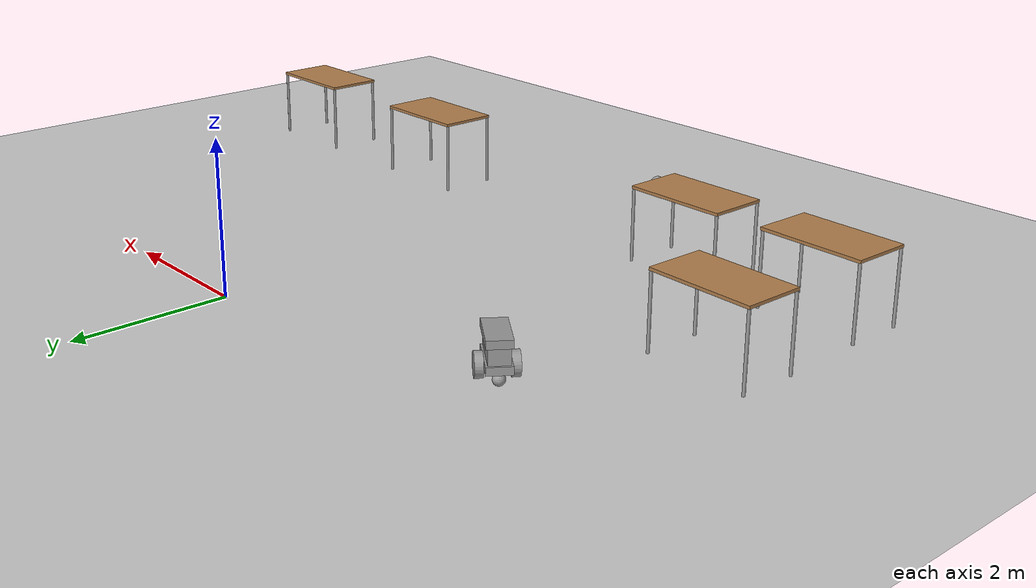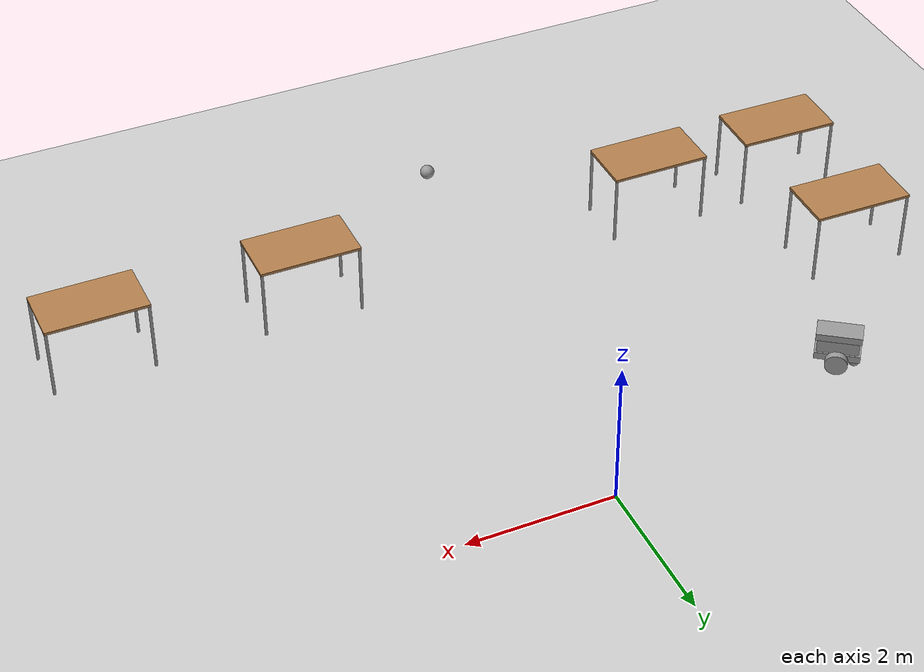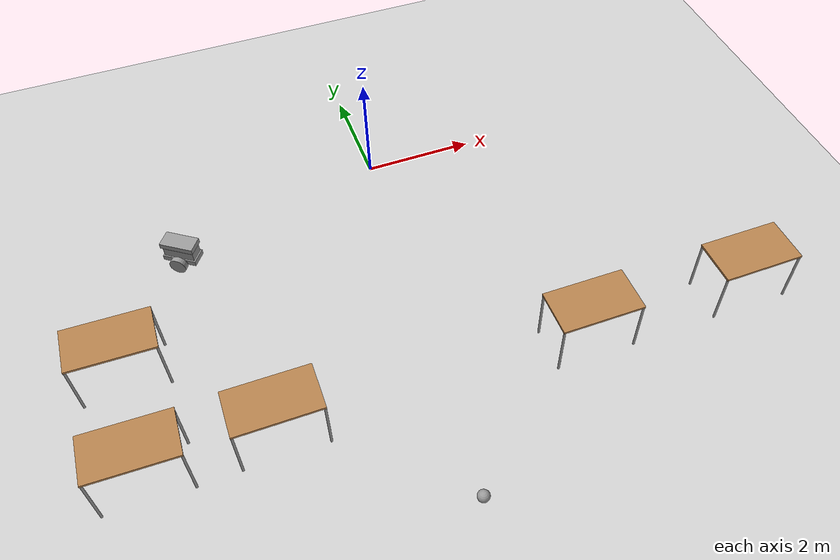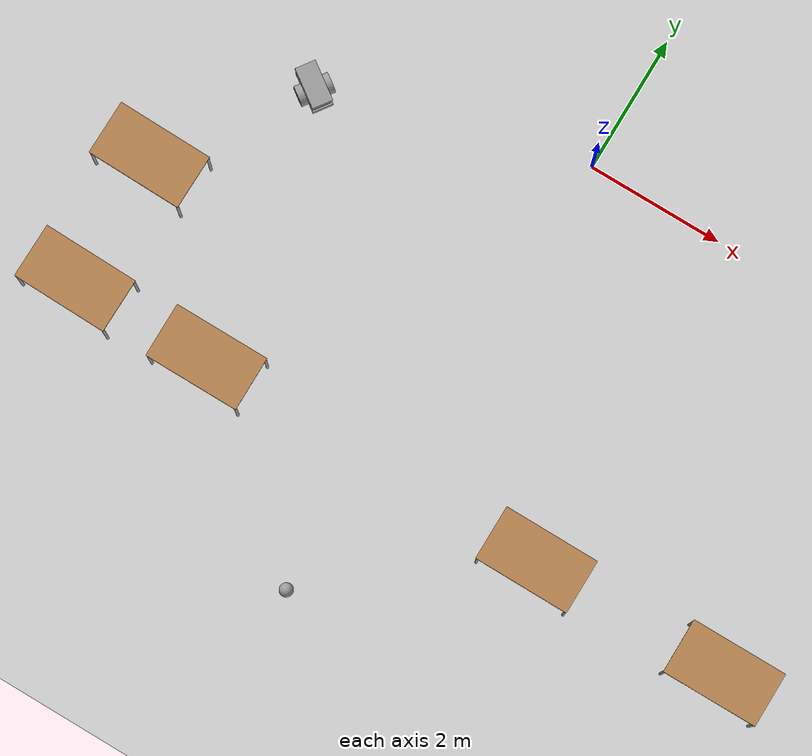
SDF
<sdf version="1.6">
 <world name="default">
  <model name="ground_plane">
   <static>1</static>
   <link name="link">
    <collision name="collision">
     <geometry><plane><normal>0 0 1</normal><size>100 100</size></plane></geometry>
     <surface><friction><ode><mu>100</mu><mu2>50</mu2></ode></friction></surface>
    </collision>
    <visual name="visual">
     <cast_shadows>0</cast_shadows>
     <geometry><plane><normal>0 0 1</normal><size>100 100</size></plane></geometry>
     <material>
      <script><uri>file://media/materials/scripts/gazebo.material</uri><name>Gazebo/Grey</name></script>
     </material>
    </visual>
   </link>
  </model>
  <model name="Robot_0">
   <link name="link_0">
    <pose>0.0375 0 -0.0375 0 -0 0</pose>
    <inertial>
     <mass>1</mass>
     <inertia>
      <ixx>0.166667</ixx>
      <ixy>0</ixy>
      <ixz>0</ixz>
      <iyy>0.166667</iyy>
      <iyz>0</iyz>
      <izz>0.166667</izz>
     </inertia>
    </inertial>
    <visual name="visual">
     <geometry><box><size>0.6 0.3 0.1</size></box></geometry>
     <material>
      <lighting>1</lighting>
      <script><uri>file://media/materials/scripts/gazebo.material</uri><name>Gazebo/Grey</name></script>
      <ambient>0.3 0.3 0.3 1</ambient>
      <diffuse>0.7 0.7 0.7 1</diffuse>
      <specular>0.01 0.01 0.01 1</specular>
      <emissive>0 0 0 1</emissive>
      <shader type="vertex"><normal_map>__default__</normal_map></shader>
     </material>
    </visual>
    <collision name="collision">
     <geometry><box><size>0.6 0.3 0.1</size></box></geometry>
     <surface>
      <friction>
       <ode><mu>1</mu><mu2>1</mu2><fdir1>0 0 0</fdir1><slip1>0</slip1><slip2>0</slip2></ode>
       <torsional>
        <coefficient>1</coefficient>
        <patch_radius>0</patch_radius>
        <surface_radius>0</surface_radius>
        <use_patch_radius>1</use_patch_radius>
        <ode><slip>0</slip></ode>
       </torsional>
      </friction>
      <bounce><restitution_coefficient>0</restitution_coefficient><threshold>1e+06</threshold></bounce>
      <contact>
       <collide_without_contact>0</collide_without_contact>
       <collide_without_contact_bitmask>1</collide_without_contact_bitmask>
       <collide_bitmask>1</collide_bitmask>
       <ode>
        <soft_cfm>0</soft_cfm>
        <soft_erp>0.2</soft_erp>
        <kp>1e+13</kp>
        <kd>1</kd>
        <max_vel>0.01</max_vel>
        <min_depth>0</min_depth>
       </ode>
       <bullet>
        <split_impulse>1</split_impulse>
        <split_impulse_penetration_threshold>-0.01</split_impulse_penetration_threshold>
        <soft_cfm>0</soft_cfm>
        <soft_erp>0.2</soft_erp>
        <kp>1e+13</kp>
        <kd>1</kd>
       </bullet>
      </contact>
     </surface>
    </collision>
   </link>
   <link name="link_0_clone">
    <pose>0.0375 0 0.2625 0 -0 0</pose>
    <inertial>
     <mass>1</mass>
     <inertia>
      <ixx>0.166667</ixx>
      <ixy>0</ixy>
      <ixz>0</ixz>
      <iyy>0.166667</iyy>
      <iyz>0</iyz>
      <izz>0.166667</izz>
     </inertia>
    </inertial>
    <visual name="visual">
     <geometry><box><size>0.6 0.3 0.1</size></box></geometry>
     <material>
      <lighting>1</lighting>
      <script><uri>file://media/materials/scripts/gazebo.material</uri><name>Gazebo/Grey</name></script>
      <ambient>0.3 0.3 0.3 1</ambient>
      <diffuse>0.7 0.7 0.7 1</diffuse>
      <specular>0.01 0.01 0.01 1</specular>
      <emissive>0 0 0 1</emissive>
      <shader type="vertex"><normal_map>__default__</normal_map></shader>
     </material>
    </visual>
    <collision name="collision">
     <geometry><box><size>0.6 0.3 0.1</size></box></geometry>
     <surface>
      <friction>
       <ode><mu>1</mu><mu2>1</mu2><fdir1>0 0 0</fdir1><slip1>0</slip1><slip2>0</slip2></ode>
       <torsional>
        <coefficient>1</coefficient>
        <patch_radius>0</patch_radius>
        <surface_radius>0</surface_radius>
        <use_patch_radius>1</use_patch_radius>
        <ode><slip>0</slip></ode>
       </torsional>
      </friction>
      <bounce><restitution_coefficient>0</restitution_coefficient><threshold>1e+06</threshold></bounce>
      <contact>
       <collide_without_contact>0</collide_without_contact>
       <collide_without_contact_bitmask>1</collide_without_contact_bitmask>
       <collide_bitmask>1</collide_bitmask>
       <ode>
        <soft_cfm>0</soft_cfm>
        <soft_erp>0.2</soft_erp>
        <kp>1e+13</kp>
        <kd>1</kd>
        <max_vel>0.01</max_vel>
        <min_depth>0</min_depth>
       </ode>
       <bullet>
        <split_impulse>1</split_impulse>
        <split_impulse_penetration_threshold>-0.01</split_impulse_penetration_threshold>
        <soft_cfm>0</soft_cfm>
        <soft_erp>0.2</soft_erp>
        <kp>1e+13</kp>
        <kd>1</kd>
       </bullet>
      </contact>
     </surface>
    </collision>
   </link>
   <link name="link_1">
    <pose>0.0375 0 0.1125 0 -0 0</pose>
    <inertial>
     <mass>1</mass>
     <inertia>
      <ixx>0.166667</ixx>
      <ixy>0</ixy>
      <ixz>0</ixz>
      <iyy>0.166667</iyy>
      <iyz>0</iyz>
      <izz>0.166667</izz>
     </inertia>
    </inertial>
    <visual name="visual">
     <geometry><box><size>0.55 0.25 0.2</size></box></geometry>
     <material>
      <lighting>1</lighting>
      <script><uri>file://media/materials/scripts/gazebo.material</uri><name>Gazebo/Grey</name></script>
      <ambient>0.3 0.3 0.3 1</ambient>
      <diffuse>0.7 0.7 0.7 1</diffuse>
      <specular>0.01 0.01 0.01 1</specular>
      <emissive>0 0 0 1</emissive>
      <shader type="vertex"><normal_map>__default__</normal_map></shader>
     </material>
    </visual>
    <collision name="collision">
     <geometry><box><size>0.55 0.25 0.2</size></box></geometry>
     <surface>
      <friction>
       <ode><mu>1</mu><mu2>1</mu2><fdir1>0 0 0</fdir1><slip1>0</slip1><slip2>0</slip2></ode>
       <torsional>
        <coefficient>1</coefficient>
        <patch_radius>0</patch_radius>
        <surface_radius>0</surface_radius>
        <use_patch_radius>1</use_patch_radius>
        <ode><slip>0</slip></ode>
       </torsional>
      </friction>
      <bounce><restitution_coefficient>0</restitution_coefficient><threshold>1e+06</threshold></bounce>
      <contact>
       <collide_without_contact>0</collide_without_contact>
       <collide_without_contact_bitmask>1</collide_without_contact_bitmask>
       <collide_bitmask>1</collide_bitmask>
       <ode>
        <soft_cfm>0</soft_cfm>
        <soft_erp>0.2</soft_erp>
        <kp>1e+13</kp>
        <kd>1</kd>
        <max_vel>0.01</max_vel>
        <min_depth>0</min_depth>
       </ode>
       <bullet>
        <split_impulse>1</split_impulse>
        <split_impulse_penetration_threshold>-0.01</split_impulse_penetration_threshold>
        <soft_cfm>0</soft_cfm>
        <soft_erp>0.2</soft_erp>
        <kp>1e+13</kp>
        <kd>1</kd>
       </bullet>
      </contact>
     </surface>
    </collision>
   </link>
   <link name="link_2">
    <pose>0.0375 -0.200014 -0.0875 1.5707 -0 0</pose>
    <inertial>
     <mass>1</mass>
     <inertia><ixx>0.145833</ixx><ixy>0</ixy><ixz>0</ixz><iyy>0.145833</iyy><iyz>0</iyz><izz>0.125</izz></inertia>
    </inertial>
    <visual name="visual">
     <geometry><cylinder><radius>0.15</radius><length>0.1</length></cylinder></geometry>
     <material>
      <lighting>1</lighting>
      <script><uri>file://media/materials/scripts/gazebo.material</uri><name>Gazebo/Grey</name></script>
      <ambient>0.3 0.3 0.3 1</ambient>
      <diffuse>0.7 0.7 0.7 1</diffuse>
      <specular>0.01 0.01 0.01 1</specular>
      <emissive>0 0 0 1</emissive>
      <shader type="vertex"><normal_map>__default__</normal_map></shader>
     </material>
    </visual>
    <collision name="collision">
     <geometry><cylinder><radius>0.15</radius><length>0.1</length></cylinder></geometry>
     <surface>
      <friction>
       <ode><mu>1</mu><mu2>1</mu2><fdir1>0 0 0</fdir1><slip1>0</slip1><slip2>0</slip2></ode>
       <torsional>
        <coefficient>1</coefficient>
        <patch_radius>0</patch_radius>
        <surface_radius>0</surface_radius>
        <use_patch_radius>1</use_patch_radius>
        <ode><slip>0</slip></ode>
       </torsional>
      </friction>
      <bounce><restitution_coefficient>0</restitution_coefficient><threshold>1e+06</threshold></bounce>
      <contact>
       <collide_without_contact>0</collide_without_contact>
       <collide_without_contact_bitmask>1</collide_without_contact_bitmask>
       <collide_bitmask>1</collide_bitmask>
       <ode>
        <soft_cfm>0</soft_cfm>
        <soft_erp>0.2</soft_erp>
        <kp>1e+13</kp>
        <kd>1</kd>
        <max_vel>0.01</max_vel>
        <min_depth>0</min_depth>
       </ode>
       <bullet>
        <split_impulse>1</split_impulse>
        <split_impulse_penetration_threshold>-0.01</split_impulse_penetration_threshold>
        <soft_cfm>0</soft_cfm>
        <soft_erp>0.2</soft_erp>
        <kp>1e+13</kp>
        <kd>1</kd>
       </bullet>
      </contact>
     </surface>
    </collision>
   </link>
   <link name="link_2_clone">
    <pose>0.0375 0.200014 -0.0875 1.5707 -0 0</pose>
    <inertial>
     <mass>1</mass>
     <inertia><ixx>0.145833</ixx><ixy>0</ixy><ixz>0</ixz><iyy>0.145833</iyy><iyz>0</iyz><izz>0.125</izz></inertia>
    </inertial>
    <visual name="visual">
     <geometry><cylinder><radius>0.15</radius><length>0.1</length></cylinder></geometry>
     <material>
      <lighting>1</lighting>
      <script><uri>file://media/materials/scripts/gazebo.material</uri><name>Gazebo/Grey</name></script>
      <ambient>0.3 0.3 0.3 1</ambient>
      <diffuse>0.7 0.7 0.7 1</diffuse>
      <specular>0.01 0.01 0.01 1</specular>
      <emissive>0 0 0 1</emissive>
      <shader type="vertex"><normal_map>__default__</normal_map></shader>
     </material>
    </visual>
    <collision name="collision">
     <geometry><cylinder><radius>0.15</radius><length>0.1</length></cylinder></geometry>
     <surface>
      <friction>
       <ode><mu>1</mu><mu2>1</mu2><fdir1>0 0 0</fdir1><slip1>0</slip1><slip2>0</slip2></ode>
       <torsional>
        <coefficient>1</coefficient>
        <patch_radius>0</patch_radius>
        <surface_radius>0</surface_radius>
        <use_patch_radius>1</use_patch_radius>
        <ode><slip>0</slip></ode>
       </torsional>
      </friction>
      <bounce><restitution_coefficient>0</restitution_coefficient><threshold>1e+06</threshold></bounce>
      <contact>
       <collide_without_contact>0</collide_without_contact>
       <collide_without_contact_bitmask>1</collide_without_contact_bitmask>
       <collide_bitmask>1</collide_bitmask>
       <ode>
        <soft_cfm>0</soft_cfm>
        <soft_erp>0.2</soft_erp>
        <kp>1e+13</kp>
        <kd>1</kd>
        <max_vel>0.01</max_vel>
        <min_depth>0</min_depth>
       </ode>
       <bullet>
        <split_impulse>1</split_impulse>
        <split_impulse_penetration_threshold>-0.01</split_impulse_penetration_threshold>
        <soft_cfm>0</soft_cfm>
        <soft_erp>0.2</soft_erp>
        <kp>1e+13</kp>
        <kd>1</kd>
       </bullet>
      </contact>
     </surface>
    </collision>
   </link>
   <link name="link_3">
    <pose>-0.1875 0 -0.1625 0 -0 0</pose>
    <inertial>
     <mass>1</mass>
     <inertia><ixx>0.1</ixx><ixy>0</ixy><ixz>0</ixz><iyy>0.1</iyy><iyz>0</iyz><izz>0.1</izz></inertia>
    </inertial>
    <visual name="visual">
     <geometry><sphere><radius>0.075</radius></sphere></geometry>
     <material>
      <lighting>1</lighting>
      <script><uri>file://media/materials/scripts/gazebo.material</uri><name>Gazebo/Grey</name></script>
      <ambient>0.3 0.3 0.3 1</ambient>
      <diffuse>0.7 0.7 0.7 1</diffuse>
      <specular>0.01 0.01 0.01 1</specular>
      <emissive>0 0 0 1</emissive>
      <shader type="vertex"><normal_map>__default__</normal_map></shader>
     </material>
    </visual>
    <collision name="collision">
     <geometry><sphere><radius>0.075</radius></sphere></geometry>
     <surface>
      <friction>
       <ode><mu>1</mu><mu2>1</mu2><fdir1>0 0 0</fdir1><slip1>0</slip1><slip2>0</slip2></ode>
       <torsional>
        <coefficient>1</coefficient>
        <patch_radius>0</patch_radius>
        <surface_radius>0</surface_radius>
        <use_patch_radius>1</use_patch_radius>
        <ode><slip>0</slip></ode>
       </torsional>
      </friction>
      <bounce><restitution_coefficient>0</restitution_coefficient><threshold>1e+06</threshold></bounce>
      <contact>
       <collide_without_contact>0</collide_without_contact>
       <collide_without_contact_bitmask>1</collide_without_contact_bitmask>
       <collide_bitmask>1</collide_bitmask>
       <ode>
        <soft_cfm>0</soft_cfm>
        <soft_erp>0.2</soft_erp>
        <kp>1e+13</kp>
        <kd>1</kd>
        <max_vel>0.01</max_vel>
        <min_depth>0</min_depth>
       </ode>
       <bullet>
        <split_impulse>1</split_impulse>
        <split_impulse_penetration_threshold>-0.01</split_impulse_penetration_threshold>
        <soft_cfm>0</soft_cfm>
        <soft_erp>0.2</soft_erp>
        <kp>1e+13</kp>
        <kd>1</kd>
       </bullet>
      </contact>
     </surface>
    </collision>
   </link>
   <joint name="link_0_JOINT_0" type="fixed">
    <parent>link_0</parent>
    <child>link_1</child>
    <physics>
     <ode><limit><cfm>0</cfm><erp>0.2</erp></limit><suspension><cfm>0</cfm><erp>0.2</erp></suspension></ode>
    </physics>
   </joint>
   <joint name="link_0_JOINT_2" type="revolute">
    <parent>link_0</parent>
    <child>link_2</child>
    <axis>
     <xyz>0 0 1</xyz>
     <use_parent_model_frame>0</use_parent_model_frame>
     <limit>
      <lower>-1.79769e+308</lower>
      <upper>1.79769e+308</upper>
      <effort>-1</effort>
      <velocity>-1</velocity>
     </limit>
     <dynamics>
      <spring_reference>0</spring_reference>
      <spring_stiffness>0</spring_stiffness>
      <damping>0</damping>
     </dynamics>
    </axis>
    <physics>
     <ode><limit><cfm>0</cfm><erp>0.2</erp></limit><suspension><cfm>0</cfm><erp>0.2</erp></suspension></ode>
    </physics>
   </joint>
   <joint name="link_0_JOINT_3" type="revolute">
    <parent>link_0</parent>
    <child>link_2_clone</child>
    <axis>
     <xyz>0 0 1</xyz>
     <use_parent_model_frame>0</use_parent_model_frame>
     <limit>
      <lower>-1.79769e+308</lower>
      <upper>1.79769e+308</upper>
      <effort>-1</effort>
      <velocity>-1</velocity>
     </limit>
     <dynamics>
      <spring_reference>0</spring_reference>
      <spring_stiffness>0</spring_stiffness>
      <damping>0</damping>
     </dynamics>
    </axis>
    <physics>
     <ode><limit><cfm>0</cfm><erp>0.2</erp></limit><suspension><cfm>0</cfm><erp>0.2</erp></suspension></ode>
    </physics>
   </joint>
   <joint name="link_0_JOINT_4" type="ball">
    <parent>link_0</parent>
    <child>link_3</child>
    <physics>
     <ode><limit><cfm>0</cfm><erp>0.2</erp></limit><suspension><cfm>0</cfm><erp>0.2</erp></suspension></ode>
    </physics>
   </joint>
   <joint name="link_1_JOINT_1" type="fixed">
    <parent>link_1</parent>
    <child>link_0_clone</child>
    <physics>
     <ode><limit><cfm>0</cfm><erp>0.2</erp></limit><suspension><cfm>0</cfm><erp>0.2</erp></suspension></ode>
    </physics>
   </joint>
   <static>0</static>
   <pose>-3.78997 -1.03558 0.237504 4e-06 -1.4e-05 -0.619353</pose>
  </model>
  <model name="table">
   <static>0</static>
   <link name="link">
    <collision name="surface">
     <pose>0 0 1 0 -0 0</pose>
     <geometry><box><size>1.5 0.8 0.03</size></box></geometry>
     <surface><friction><ode><mu>0.6</mu><mu2>0.6</mu2></ode></friction></surface>
    </collision>
    <visual name="visual1">
     <pose>0 0 1 0 -0 0</pose>
     <geometry><box><size>1.4 0.8 0.04</size></box></geometry>
     <material>
      <script><uri>file://media/materials/scripts/gazebo.material</uri><name>Gazebo/Wood</name></script>
     </material>
    </visual>
    <collision name="front_left_leg">
     <pose>0.68 0.38 0.5 0 -0 0</pose>
     <geometry><cylinder><radius>0.02</radius><length>1</length></cylinder></geometry>
    </collision>
    <visual name="front_left_leg">
     <pose>0.68 0.38 0.5 0 -0 0</pose>
     <geometry><cylinder><radius>0.02</radius><length>1</length></cylinder></geometry>
     <material>
      <script><uri>file://media/materials/scripts/gazebo.material</uri><name>Gazebo/Grey</name></script>
     </material>
    </visual>
    <collision name="front_right_leg">
     <pose>0.68 -0.38 0.5 0 -0 0</pose>
     <geometry><cylinder><radius>0.02</radius><length>1</length></cylinder></geometry>
    </collision>
    <visual name="front_right_leg">
     <pose>0.68 -0.38 0.5 0 -0 0</pose>
     <geometry><cylinder><radius>0.02</radius><length>1</length></cylinder></geometry>
     <material>
      <script><uri>file://media/materials/scripts/gazebo.material</uri><name>Gazebo/Grey</name></script>
     </material>
    </visual>
    <collision name="back_right_leg">
     <pose>-0.68 -0.38 0.5 0 -0 0</pose>
     <geometry><cylinder><radius>0.02</radius><length>1</length></cylinder></geometry>
    </collision>
    <visual name="back_right_leg">
     <pose>-0.68 -0.38 0.5 0 -0 0</pose>
     <geometry><cylinder><radius>0.02</radius><length>1</length></cylinder></geometry>
     <material>
      <script><uri>file://media/materials/scripts/gazebo.material</uri><name>Gazebo/Grey</name></script>
     </material>
    </visual>
    <collision name="back_left_leg">
     <pose>-0.68 0.38 0.5 0 -0 0</pose>
     <geometry><cylinder><radius>0.02</radius><length>1</length></cylinder></geometry>
    </collision>
    <visual name="back_left_leg">
     <pose>-0.68 0.38 0.5 0 -0 0</pose>
     <geometry><cylinder><radius>0.02</radius><length>1</length></cylinder></geometry>
     <material>
      <script><uri>file://media/materials/scripts/gazebo.material</uri><name>Gazebo/Grey</name></script>
     </material>
    </visual>
    <inertial>
     <inertia><ixx>1</ixx><ixy>0</ixy><ixz>0</ixz><iyy>1</iyy><iyz>0</iyz><izz>1</izz></inertia>
     <mass>1</mass>
    </inertial>
   </link>
   <pose>2.1034 -5.03923 -5e-06 -2e-06 -1e-06 -0.002547</pose>
  </model>
  <model name="table_clone">
   <static>0</static>
   <link name="link">
    <collision name="surface">
     <pose>0 0 1 0 -0 0</pose>
     <geometry><box><size>1.5 0.8 0.03</size></box></geometry>
     <surface><friction><ode><mu>0.6</mu><mu2>0.6</mu2></ode></friction></surface>
    </collision>
    <visual name="visual1">
     <pose>0 0 1 0 -0 0</pose>
     <geometry><box><size>1.4 0.8 0.04</size></box></geometry>
     <material>
      <script><uri>file://media/materials/scripts/gazebo.material</uri><name>Gazebo/Wood</name></script>
     </material>
    </visual>
    <collision name="front_left_leg">
     <pose>0.68 0.38 0.5 0 -0 0</pose>
     <geometry><cylinder><radius>0.02</radius><length>1</length></cylinder></geometry>
    </collision>
    <visual name="front_left_leg">
     <pose>0.68 0.38 0.5 0 -0 0</pose>
     <geometry><cylinder><radius>0.02</radius><length>1</length></cylinder></geometry>
     <material>
      <script><uri>file://media/materials/scripts/gazebo.material</uri><name>Gazebo/Grey</name></script>
     </material>
    </visual>
    <collision name="front_right_leg">
     <pose>0.68 -0.38 0.5 0 -0 0</pose>
     <geometry><cylinder><radius>0.02</radius><length>1</length></cylinder></geometry>
    </collision>
    <visual name="front_right_leg">
     <pose>0.68 -0.38 0.5 0 -0 0</pose>
     <geometry><cylinder><radius>0.02</radius><length>1</length></cylinder></geometry>
     <material>
      <script><uri>file://media/materials/scripts/gazebo.material</uri><name>Gazebo/Grey</name></script>
     </material>
    </visual>
    <collision name="back_right_leg">
     <pose>-0.68 -0.38 0.5 0 -0 0</pose>
     <geometry><cylinder><radius>0.02</radius><length>1</length></cylinder></geometry>
    </collision>
    <visual name="back_right_leg">
     <pose>-0.68 -0.38 0.5 0 -0 0</pose>
     <geometry><cylinder><radius>0.02</radius><length>1</length></cylinder></geometry>
     <material>
      <script><uri>file://media/materials/scripts/gazebo.material</uri><name>Gazebo/Grey</name></script>
     </material>
    </visual>
    <collision name="back_left_leg">
     <pose>-0.68 0.38 0.5 0 -0 0</pose>
     <geometry><cylinder><radius>0.02</radius><length>1</length></cylinder></geometry>
    </collision>
    <visual name="back_left_leg">
     <pose>-0.68 0.38 0.5 0 -0 0</pose>
     <geometry><cylinder><radius>0.02</radius><length>1</length></cylinder></geometry>
     <material>
      <script><uri>file://media/materials/scripts/gazebo.material</uri><name>Gazebo/Grey</name></script>
     </material>
    </visual>
    <inertial>
     <inertia><ixx>1</ixx><ixy>0</ixy><ixz>0</ixz><iyy>1</iyy><iyz>0</iyz><izz>1</izz></inertia>
     <mass>1</mass>
    </inertial>
   </link>
   <pose>4.98309 -5.03998 -1e-06 0 1e-06 0.002585</pose>
  </model>
  <model name="table_clone_4">
   <static>0</static>
   <link name="link">
    <collision name="surface">
     <pose>0 0 1 0 -0 0</pose>
     <geometry><box><size>1.5 0.8 0.03</size></box></geometry>
     <surface><friction><ode><mu>0.6</mu><mu2>0.6</mu2></ode></friction></surface>
    </collision>
    <visual name="visual1">
     <pose>0 0 1 0 -0 0</pose>
     <geometry><box><size>1.4 0.8 0.04</size></box></geometry>
     <material>
      <script><uri>file://media/materials/scripts/gazebo.material</uri><name>Gazebo/Wood</name></script>
     </material>
    </visual>
    <collision name="front_left_leg">
     <pose>0.68 0.38 0.5 0 -0 0</pose>
     <geometry><cylinder><radius>0.02</radius><length>1</length></cylinder></geometry>
    </collision>
    <visual name="front_left_leg">
     <pose>0.68 0.38 0.5 0 -0 0</pose>
     <geometry><cylinder><radius>0.02</radius><length>1</length></cylinder></geometry>
     <material>
      <script><uri>file://media/materials/scripts/gazebo.material</uri><name>Gazebo/Grey</name></script>
     </material>
    </visual>
    <collision name="front_right_leg">
     <pose>0.68 -0.38 0.5 0 -0 0</pose>
     <geometry><cylinder><radius>0.02</radius><length>1</length></cylinder></geometry>
    </collision>
    <visual name="front_right_leg">
     <pose>0.68 -0.38 0.5 0 -0 0</pose>
     <geometry><cylinder><radius>0.02</radius><length>1</length></cylinder></geometry>
     <material>
      <script><uri>file://media/materials/scripts/gazebo.material</uri><name>Gazebo/Grey</name></script>
     </material>
    </visual>
    <collision name="back_right_leg">
     <pose>-0.68 -0.38 0.5 0 -0 0</pose>
     <geometry><cylinder><radius>0.02</radius><length>1</length></cylinder></geometry>
    </collision>
    <visual name="back_right_leg">
     <pose>-0.68 -0.38 0.5 0 -0 0</pose>
     <geometry><cylinder><radius>0.02</radius><length>1</length></cylinder></geometry>
     <material>
      <script><uri>file://media/materials/scripts/gazebo.material</uri><name>Gazebo/Grey</name></script>
     </material>
    </visual>
    <collision name="back_left_leg">
     <pose>-0.68 0.38 0.5 0 -0 0</pose>
     <geometry><cylinder><radius>0.02</radius><length>1</length></cylinder></geometry>
    </collision>
    <visual name="back_left_leg">
     <pose>-0.68 0.38 0.5 0 -0 0</pose>
     <geometry><cylinder><radius>0.02</radius><length>1</length></cylinder></geometry>
     <material>
      <script><uri>file://media/materials/scripts/gazebo.material</uri><name>Gazebo/Grey</name></script>
     </material>
    </visual>
    <inertial>
     <inertia><ixx>1</ixx><ixy>0</ixy><ixz>0</ixz><iyy>1</iyy><iyz>0</iyz><izz>1</izz></inertia>
     <mass>1</mass>
    </inertial>
   </link>
   <pose>-5.09161 -3.07244 -9e-06 -1e-06 -1e-06 -0.019292</pose>
  </model>
  <model name="table_clone_6">
   <static>0</static>
   <link name="link">
    <collision name="surface">
     <pose>0 0 1 0 -0 0</pose>
     <geometry><box><size>1.5 0.8 0.03</size></box></geometry>
     <surface><friction><ode><mu>0.6</mu><mu2>0.6</mu2></ode></friction></surface>
    </collision>
    <visual name="visual1">
     <pose>0 0 1 0 -0 0</pose>
     <geometry><box><size>1.4 0.8 0.04</size></box></geometry>
     <material>
      <script><uri>file://media/materials/scripts/gazebo.material</uri><name>Gazebo/Wood</name></script>
     </material>
    </visual>
    <collision name="front_left_leg">
     <pose>0.68 0.38 0.5 0 -0 0</pose>
     <geometry><cylinder><radius>0.02</radius><length>1</length></cylinder></geometry>
    </collision>
    <visual name="front_left_leg">
     <pose>0.68 0.38 0.5 0 -0 0</pose>
     <geometry><cylinder><radius>0.02</radius><length>1</length></cylinder></geometry>
     <material>
      <script><uri>file://media/materials/scripts/gazebo.material</uri><name>Gazebo/Grey</name></script>
     </material>
    </visual>
    <collision name="front_right_leg">
     <pose>0.68 -0.38 0.5 0 -0 0</pose>
     <geometry><cylinder><radius>0.02</radius><length>1</length></cylinder></geometry>
    </collision>
    <visual name="front_right_leg">
     <pose>0.68 -0.38 0.5 0 -0 0</pose>
     <geometry><cylinder><radius>0.02</radius><length>1</length></cylinder></geometry>
     <material>
      <script><uri>file://media/materials/scripts/gazebo.material</uri><name>Gazebo/Grey</name></script>
     </material>
    </visual>
    <collision name="back_right_leg">
     <pose>-0.68 -0.38 0.5 0 -0 0</pose>
     <geometry><cylinder><radius>0.02</radius><length>1</length></cylinder></geometry>
    </collision>
    <visual name="back_right_leg">
     <pose>-0.68 -0.38 0.5 0 -0 0</pose>
     <geometry><cylinder><radius>0.02</radius><length>1</length></cylinder></geometry>
     <material>
      <script><uri>file://media/materials/scripts/gazebo.material</uri><name>Gazebo/Grey</name></script>
     </material>
    </visual>
    <collision name="back_left_leg">
     <pose>-0.68 0.38 0.5 0 -0 0</pose>
     <geometry><cylinder><radius>0.02</radius><length>1</length></cylinder></geometry>
    </collision>
    <visual name="back_left_leg">
     <pose>-0.68 0.38 0.5 0 -0 0</pose>
     <geometry><cylinder><radius>0.02</radius><length>1</length></cylinder></geometry>
     <material>
      <script><uri>file://media/materials/scripts/gazebo.material</uri><name>Gazebo/Grey</name></script>
     </material>
    </visual>
    <inertial>
     <inertia><ixx>1</ixx><ixy>0</ixy><ixz>0</ixz><iyy>1</iyy><iyz>0</iyz><izz>1</izz></inertia>
     <mass>1</mass>
    </inertial>
   </link>
   <pose>-5.07084 -4.997 -2e-06 -0 2e-06 -0.021646</pose>
  </model>
  <model name="table_clone_7">
   <static>0</static>
   <link name="link">
    <collision name="surface">
     <pose>0 0 1 0 -0 0</pose>
     <geometry><box><size>1.5 0.8 0.03</size></box></geometry>
     <surface><friction><ode><mu>0.6</mu><mu2>0.6</mu2></ode></friction></surface>
    </collision>
    <visual name="visual1">
     <pose>0 0 1 0 -0 0</pose>
     <geometry><box><size>1.4 0.8 0.04</size></box></geometry>
     <material>
      <script><uri>file://media/materials/scripts/gazebo.material</uri><name>Gazebo/Wood</name></script>
     </material>
    </visual>
    <collision name="front_left_leg">
     <pose>0.68 0.38 0.5 0 -0 0</pose>
     <geometry><cylinder><radius>0.02</radius><length>1</length></cylinder></geometry>
    </collision>
    <visual name="front_left_leg">
     <pose>0.68 0.38 0.5 0 -0 0</pose>
     <geometry><cylinder><radius>0.02</radius><length>1</length></cylinder></geometry>
     <material>
      <script><uri>file://media/materials/scripts/gazebo.material</uri><name>Gazebo/Grey</name></script>
     </material>
    </visual>
    <collision name="front_right_leg">
     <pose>0.68 -0.38 0.5 0 -0 0</pose>
     <geometry><cylinder><radius>0.02</radius><length>1</length></cylinder></geometry>
    </collision>
    <visual name="front_right_leg">
     <pose>0.68 -0.38 0.5 0 -0 0</pose>
     <geometry><cylinder><radius>0.02</radius><length>1</length></cylinder></geometry>
     <material>
      <script><uri>file://media/materials/scripts/gazebo.material</uri><name>Gazebo/Grey</name></script>
     </material>
    </visual>
    <collision name="back_right_leg">
     <pose>-0.68 -0.38 0.5 0 -0 0</pose>
     <geometry><cylinder><radius>0.02</radius><length>1</length></cylinder></geometry>
    </collision>
    <visual name="back_right_leg">
     <pose>-0.68 -0.38 0.5 0 -0 0</pose>
     <geometry><cylinder><radius>0.02</radius><length>1</length></cylinder></geometry>
     <material>
      <script><uri>file://media/materials/scripts/gazebo.material</uri><name>Gazebo/Grey</name></script>
     </material>
    </visual>
    <collision name="back_left_leg">
     <pose>-0.68 0.38 0.5 0 -0 0</pose>
     <geometry><cylinder><radius>0.02</radius><length>1</length></cylinder></geometry>
    </collision>
    <visual name="back_left_leg">
     <pose>-0.68 0.38 0.5 0 -0 0</pose>
     <geometry><cylinder><radius>0.02</radius><length>1</length></cylinder></geometry>
     <material>
      <script><uri>file://media/materials/scripts/gazebo.material</uri><name>Gazebo/Grey</name></script>
     </material>
    </visual>
    <inertial>
     <inertia><ixx>1</ixx><ixy>0</ixy><ixz>0</ixz><iyy>1</iyy><iyz>0</iyz><izz>1</izz></inertia>
     <mass>1</mass>
    </inertial>
   </link>
   <pose>-3.0277 -4.99308 -5e-06 -2e-06 -1e-06 -0.002547</pose>
  </model>
  <model name="my_ball">
   <link name="link_0">
    <inertial>
     <mass>1</mass>
     <inertia><ixx>0.1</ixx><ixy>0</ixy><ixz>0</ixz><iyy>0.1</iyy><iyz>0</iyz><izz>0.1</izz></inertia>
    </inertial>
    <visual name="visual">
     <geometry><sphere><radius>0.1</radius></sphere></geometry>
     <material>
      <lighting>1</lighting>
      <script><uri>file://media/materials/scripts/gazebo.material</uri><name>Gazebo/Grey</name></script>
      <ambient>1 1 1 1</ambient>
      <diffuse>1 1 1 1</diffuse>
      <specular>1 1 1 1</specular>
      <emissive>1 1 1 1</emissive>
      <shader type="vertex"><normal_map>__default__</normal_map></shader>
     </material>
    </visual>
    <collision name="collision">
     <geometry><sphere><radius>0.1</radius></sphere></geometry>
     <surface>
      <friction>
       <ode><mu>1</mu><mu2>1</mu2><fdir1>0 0 0</fdir1><slip1>0</slip1><slip2>0</slip2></ode>
       <torsional>
        <coefficient>1</coefficient>
        <patch_radius>0</patch_radius>
        <surface_radius>0</surface_radius>
        <use_patch_radius>1</use_patch_radius>
        <ode><slip>0</slip></ode>
       </torsional>
      </friction>
      <bounce><restitution_coefficient>0</restitution_coefficient><threshold>1e+06</threshold></bounce>
      <contact>
       <collide_without_contact>0</collide_without_contact>
       <collide_without_contact_bitmask>1</collide_without_contact_bitmask>
       <collide_bitmask>1</collide_bitmask>
       <ode>
        <soft_cfm>0</soft_cfm>
        <soft_erp>0.2</soft_erp>
        <kp>1e+13</kp>
        <kd>1</kd>
        <max_vel>0.01</max_vel>
        <min_depth>0</min_depth>
       </ode>
       <bullet>
        <split_impulse>1</split_impulse>
        <split_impulse_penetration_threshold>-0.01</split_impulse_penetration_threshold>
        <soft_cfm>0</soft_cfm>
        <soft_erp>0.2</soft_erp>
        <kp>1e+13</kp>
        <kd>1</kd>
       </bullet>
      </contact>
     </surface>
    </collision>
   </link>
   <static>0</static>
   <pose>-0.562776 -7.05445 0.1 0 -0 0</pose>
  </model>
 </world>
</sdf>
